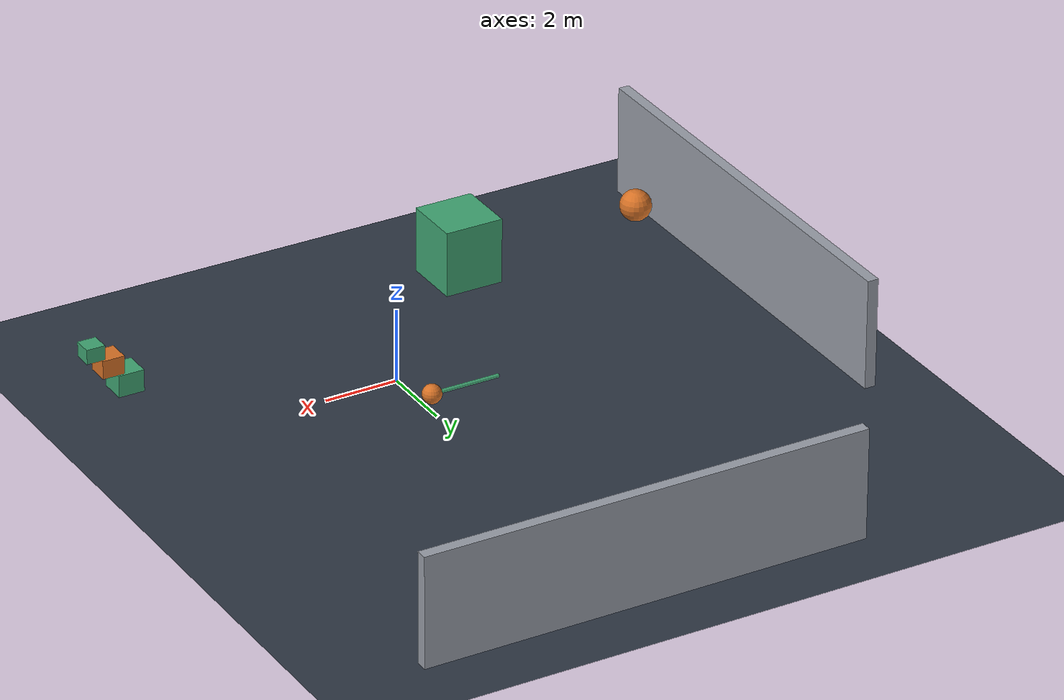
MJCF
<mujoco model="livox_mid360s_moving_sample">
  <compiler angle="degree"/>
  <!-- Gravity on, unlike livox-mid360s-sample.xml. This scene exists to show
       that the asset advances physics: the returns move because the scene
       moves, not because the scan pattern changed. -->
  <option timestep="0.01" gravity="0 0 -9.81"/>

  <visual>
    <global offwidth="1600" offheight="1200"/>
    <quality shadowsize="4096"/>
  </visual>

  <asset>
    <texture name="skybox" type="skybox" builtin="gradient"
             rgb1="0.35 0.45 0.6" rgb2="0.05 0.06 0.1" width="256" height="256"/>
    <texture name="ground_checker" type="2d" builtin="checker" width="512" height="512"
             rgb1="0.22 0.26 0.32" rgb2="0.14 0.17 0.21"/>
    <material name="ground_mat" texture="ground_checker" texrepeat="30 30" reflectance="0.05"/>
    <material name="near_mat"   rgba="0.85 0.45 0.15 1"/>
    <material name="mid_mat"    rgba="0.25 0.65 0.45 1"/>
    <material name="wall_mat"   rgba="0.60 0.62 0.66 1"/>
    <material name="sensor_mat" rgba="0.08 0.08 0.09 1"/>
  </asset>

  <worldbody>
    <light name="key_light"  pos="0 0 8"   dir="0 0 -1"      diffuse="0.7 0.7 0.7"/>
    <light name="fill_light" pos="-8 -8 6" dir="0.7 0.7 -0.6" diffuse="0.4 0.4 0.4"/>
    <camera name="overview" pos="9 -11 7" mode="targetbody" target="lidar_mount"/>

    <geom name="ground" type="plane" size="40 40 0.1" material="ground_mat"/>

    <body name="lidar_mount" pos="0 0 0">
      <geom name="post"          type="cylinder" pos="0 0 0.235" size="0.030 0.235" material="sensor_mat"/>
      <geom name="lidar_housing" type="cylinder" pos="0 0 0.500" size="0.0325 0.030" material="sensor_mat"/>
      <site name="lidar_site"    pos="0 0 0.500" size="0.015" rgba="1 0.1 0.1 1"/>
    </body>

    <body name="pendulum" pos="0 5 2.6">
      <joint name="pendulum_hinge" type="hinge" axis="0 1 0" pos="0 0 0" damping="0.02"/>
      <geom name="pendulum_arm" type="capsule" fromto="0 0 0  1.8 0 0" size="0.05" material="mid_mat"/>
      <geom name="pendulum_bob" type="sphere" pos="1.8 0 0" size="0.25" material="near_mat"/>
    </body>

    <body name="falling_ball" pos="-5 3 5.0">
      <freejoint name="falling_ball_free"/>
      <geom name="falling_ball_geom" type="sphere" size="0.40" material="near_mat"/>
    </body>

    <body name="stack_bottom" pos="6 -3 0.30">
      <freejoint name="stack_bottom_free"/>
      <geom name="stack_bottom_geom" type="box" size="0.35 0.35 0.30" material="mid_mat"/>
    </body>
    <body name="stack_middle" pos="6.45 -3 0.85">
      <freejoint name="stack_middle_free"/>
      <geom name="stack_middle_geom" type="box" size="0.30 0.30 0.25" material="near_mat"/>
    </body>
    <body name="stack_top" pos="6.90 -3 1.30">
      <freejoint name="stack_top_free"/>
      <geom name="stack_top_geom" type="box" size="0.25 0.25 0.20" material="mid_mat"/>
    </body>

    <!-- ===== Static reference =====
         Something that must not move, so a moving return is obviously the
         scene and not the sensor. -->
    <body name="box_static" pos="-4 -4 0.90">
      <geom name="box_static_geom" type="box" size="0.80 0.80 0.90" material="mid_mat"/>
    </body>

    <!-- ===== Walls: occlusion shadows and the upper FOV limit ===== -->
    <body name="wall_back" pos="0 12 1.50">
      <geom name="wall_back_geom" type="box" size="6.0 0.15 1.50" material="wall_mat"/>
    </body>
    <body name="wall_side" pos="-10 0 1.50">
      <geom name="wall_side_geom" type="box" size="0.15 6.0 1.50" material="wall_mat"/>
    </body>
  </worldbody>
</mujoco>
